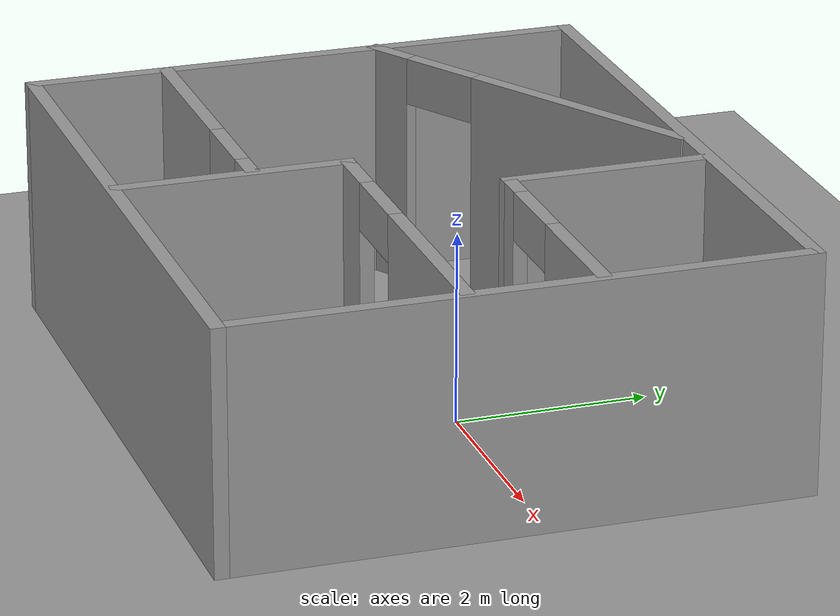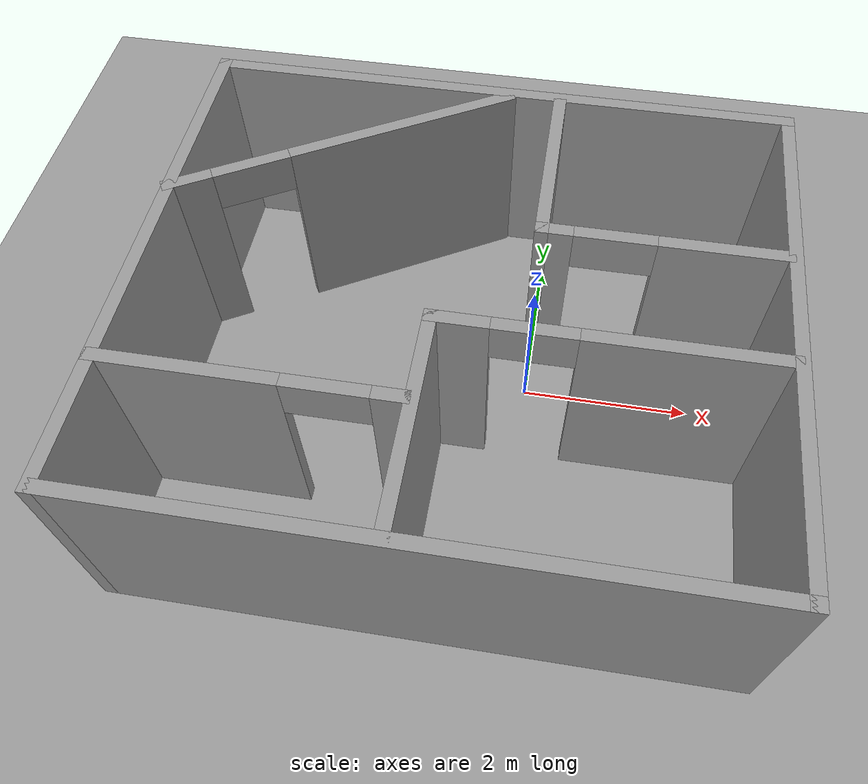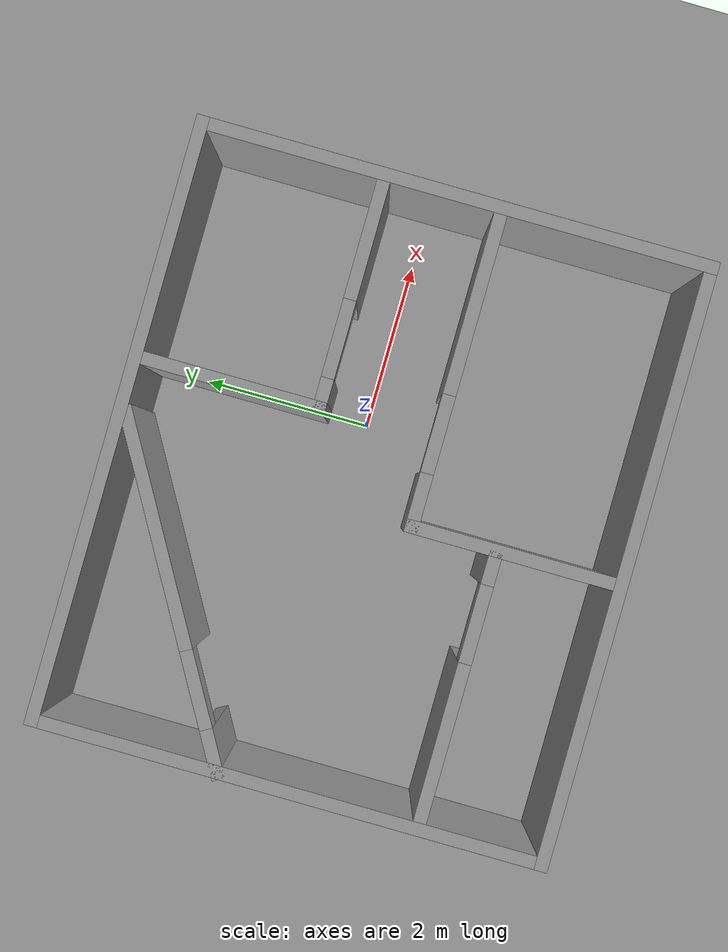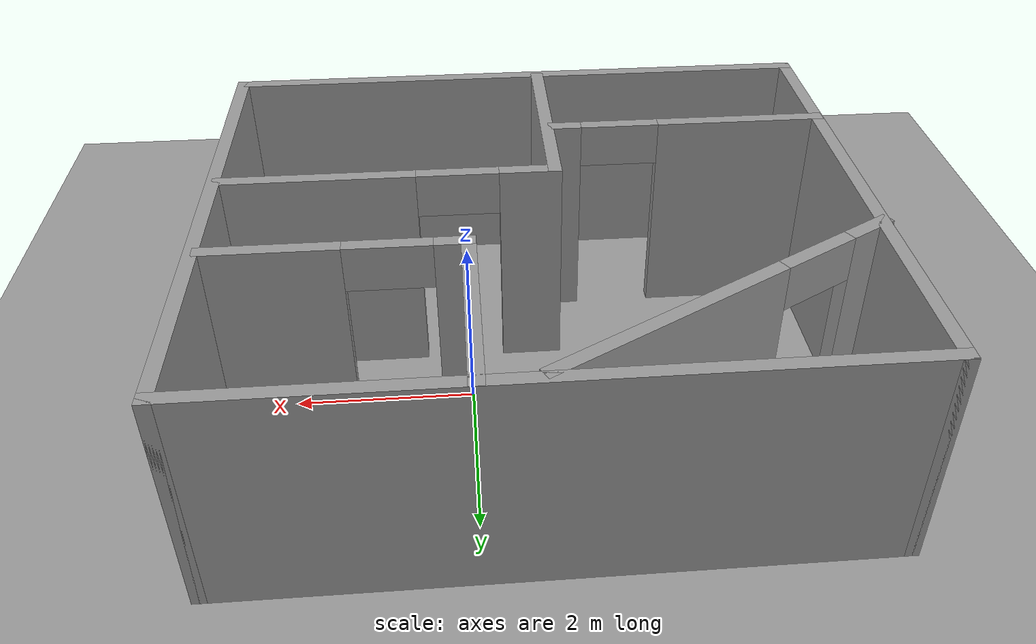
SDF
<sdf version="1.6">
 <world name="default">
  <light name="sun" type="directional">
   <pose>0 0 10 0 -0 0</pose>
   <diffuse>0.8 0.8 0.8 1</diffuse>
   <specular>0.2 0.2 0.2 1</specular>
   <attenuation>
    <range>1000</range>
    <constant>0.9</constant>
    <linear>0.01</linear>
    <quadratic>0.001</quadratic>
   </attenuation>
   <direction>0.5 0.1 -0.9</direction>
  </light>
  <scene><ambient>0.4 0.4 0.4 1</ambient><background>0.7 0.7 0.7 1</background><shadows>1</shadows></scene>
  <physics name="default_physics" default="0" type="ode">
   <max_step_size>0.01</max_step_size>
   <real_time_factor>1</real_time_factor>
   <real_time_update_rate>100</real_time_update_rate>
  </physics>
  <model name="ground_plane_0">
   <static>1</static>
   <link name="link">
    <collision name="collision">
     <geometry><plane><normal>0 0 1</normal><size>100 100</size></plane></geometry>
     <surface><friction><ode><mu>100</mu><mu2>50</mu2></ode></friction></surface>
    </collision>
    <visual name="visual">
     <cast_shadows>0</cast_shadows>
     <geometry><plane><normal>0 0 1</normal><size>100 100</size></plane></geometry>
     <material>
      <script><uri>file://media/materials/scripts/gazebo.material</uri><name>Gazebo/Grey</name></script>
     </material>
    </visual>
    <velocity_decay><linear>0</linear><angular>0</angular></velocity_decay>
   </link>
   <pose>0.497681 0 0 0 -0 0</pose>
  </model>
  <gravity>0 0 -9.8</gravity>
  <magnetic_field>6e-06 2.3e-05 -4.2e-05</magnetic_field>
  <atmosphere type="adiabatic"/>
  <spherical_coordinates>
   <surface_model>EARTH_WGS84</surface_model>
   <latitude_deg>0</latitude_deg>
   <longitude_deg>0</longitude_deg>
   <elevation>0</elevation>
   <heading_deg>0</heading_deg>
  </spherical_coordinates>
  <model name="Untitled">
   <pose>-0.784087 -0.278741 0 0 -0 0</pose>
   <link name="Wall_12">
    <collision name="Wall_12_Collision">
     <geometry><box><size>7 0.15 2.5</size></box></geometry>
     <pose>0 0 1.25 0 -0 0</pose>
    </collision>
    <visual name="Wall_12_Visual">
     <pose>0 0 1.25 0 -0 0</pose>
     <geometry><box><size>7 0.15 2.5</size></box></geometry>
     <material>
      <script><uri>file://media/materials/scripts/gazebo.material</uri><name>Gazebo/Grey</name></script>
      <ambient>1 1 1 1</ambient>
     </material>
     <meta><layer>0</layer></meta>
    </visual>
    <pose>0.017489 2.925 0 0 -0 0</pose>
   </link>
   <link name="Wall_13">
    <collision name="Wall_13_Collision">
     <geometry><box><size>6 0.15 2.5</size></box></geometry>
     <pose>0 0 1.25 0 -0 0</pose>
    </collision>
    <visual name="Wall_13_Visual">
     <pose>0 0 1.25 0 -0 0</pose>
     <geometry><box><size>6 0.15 2.5</size></box></geometry>
     <material>
      <script><uri>file://media/materials/scripts/gazebo.material</uri><name>Gazebo/Grey</name></script>
      <ambient>1 1 1 1</ambient>
     </material>
     <meta><layer>0</layer></meta>
    </visual>
    <pose>3.44249 0 0 0 -0 -1.5708</pose>
   </link>
   <link name="Wall_14">
    <collision name="Wall_14_Collision">
     <geometry><box><size>7 0.15 2.5</size></box></geometry>
     <pose>0 0 1.25 0 -0 0</pose>
    </collision>
    <visual name="Wall_14_Visual">
     <pose>0 0 1.25 0 -0 0</pose>
     <geometry><box><size>7 0.15 2.5</size></box></geometry>
     <material>
      <script><uri>file://media/materials/scripts/gazebo.material</uri><name>Gazebo/Grey</name></script>
      <ambient>1 1 1 1</ambient>
     </material>
     <meta><layer>0</layer></meta>
    </visual>
    <pose>0.017489 -2.925 0 0 -0 3.14159</pose>
   </link>
   <link name="Wall_15">
    <collision name="Wall_15_Collision">
     <geometry><box><size>6 0.15 2.5</size></box></geometry>
     <pose>0 0 1.25 0 -0 0</pose>
    </collision>
    <visual name="Wall_15_Visual">
     <pose>0 0 1.25 0 -0 0</pose>
     <geometry><box><size>6 0.15 2.5</size></box></geometry>
     <material>
      <script><uri>file://media/materials/scripts/gazebo.material</uri><name>Gazebo/Grey</name></script>
      <ambient>1 1 1 1</ambient>
     </material>
     <meta><layer>0</layer></meta>
    </visual>
    <pose>-3.40751 0 0 0 -0 1.5708</pose>
   </link>
   <link name="Wall_22">
    <pose>-1.63969 1.82728 0 0 -0 0.523599</pose>
    <visual name="Wall_22_Visual_0">
     <pose>-1.84173 0 1.25 0 -0 0</pose>
     <geometry><box><size>0.566535 0.15 2.5</size></box></geometry>
     <material>
      <script><uri>file://media/materials/scripts/gazebo.material</uri><name>Gazebo/Grey</name></script>
      <ambient>1 1 1 1</ambient>
     </material>
     <meta><layer>0</layer></meta>
    </visual>
    <collision name="Wall_22_Collision_0">
     <geometry><box><size>0.566535 0.15 2.5</size></box></geometry>
     <pose>-1.84173 0 1.25 0 -0 0</pose>
    </collision>
    <visual name="Wall_22_Visual_1">
     <pose>0.733268 0 1.25 0 -0 0</pose>
     <geometry><box><size>2.78347 0.15 2.5</size></box></geometry>
     <material>
      <script><uri>file://media/materials/scripts/gazebo.material</uri><name>Gazebo/Grey</name></script>
      <ambient>1 1 1 1</ambient>
     </material>
     <meta><layer>0</layer></meta>
    </visual>
    <collision name="Wall_22_Collision_1">
     <geometry><box><size>2.78347 0.15 2.5</size></box></geometry>
     <pose>0.733268 0 1.25 0 -0 0</pose>
    </collision>
    <visual name="Wall_22_Visual_2">
     <pose>-1.10847 0 2.25 0 -0 0</pose>
     <geometry><box><size>0.9 0.15 0.5</size></box></geometry>
     <material>
      <script><uri>file://media/materials/scripts/gazebo.material</uri><name>Gazebo/Grey</name></script>
      <ambient>1 1 1 1</ambient>
     </material>
     <meta><layer>0</layer></meta>
    </visual>
    <collision name="Wall_22_Collision_2">
     <geometry><box><size>0.9 0.15 0.5</size></box></geometry>
     <pose>-1.10847 0 2.25 0 -0 0</pose>
    </collision>
   </link>
   <link name="Wall_26">
    <collision name="Wall_26_Collision">
     <geometry><box><size>2.25 0.15 2.5</size></box></geometry>
     <pose>0 0 1.25 0 -0 0</pose>
    </collision>
    <visual name="Wall_26_Visual">
     <pose>0 0 1.25 0 -0 0</pose>
     <geometry><box><size>2.25 0.15 2.5</size></box></geometry>
     <material>
      <script><uri>file://media/materials/scripts/gazebo.material</uri><name>Gazebo/Grey</name></script>
      <ambient>1 1 1 1</ambient>
     </material>
     <meta><layer>0</layer></meta>
    </visual>
    <pose>0.764062 1.86828 0 0 -0 -1.5708</pose>
   </link>
   <link name="Wall_27">
    <pose>2.06406 0.818281 0 0 -0 0</pose>
    <visual name="Wall_27_Visual_0">
     <pose>-1.16575 0 1.25 0 -0 0</pose>
     <geometry><box><size>0.4185 0.15 2.5</size></box></geometry>
     <material>
      <script><uri>file://media/materials/scripts/gazebo.material</uri><name>Gazebo/Grey</name></script>
      <ambient>1 1 1 1</ambient>
     </material>
     <meta><layer>0</layer></meta>
    </visual>
    <collision name="Wall_27_Collision_0">
     <geometry><box><size>0.4185 0.15 2.5</size></box></geometry>
     <pose>-1.16575 0 1.25 0 -0 0</pose>
    </collision>
    <visual name="Wall_27_Visual_1">
     <pose>0.65925 0 1.25 0 -0 0</pose>
     <geometry><box><size>1.4315 0.15 2.5</size></box></geometry>
     <material>
      <script><uri>file://media/materials/scripts/gazebo.material</uri><name>Gazebo/Grey</name></script>
      <ambient>1 1 1 1</ambient>
     </material>
     <meta><layer>0</layer></meta>
    </visual>
    <collision name="Wall_27_Collision_1">
     <geometry><box><size>1.4315 0.15 2.5</size></box></geometry>
     <pose>0.65925 0 1.25 0 -0 0</pose>
    </collision>
    <visual name="Wall_27_Visual_2">
     <pose>-0.5065 0 2.25 0 -0 0</pose>
     <geometry><box><size>0.9 0.15 0.5</size></box></geometry>
     <material>
      <script><uri>file://media/materials/scripts/gazebo.material</uri><name>Gazebo/Grey</name></script>
      <ambient>1 1 1 1</ambient>
     </material>
     <meta><layer>0</layer></meta>
    </visual>
    <collision name="Wall_27_Collision_2">
     <geometry><box><size>0.9 0.15 0.5</size></box></geometry>
     <pose>-0.5065 0 2.25 0 -0 0</pose>
    </collision>
   </link>
   <link name="Wall_29">
    <pose>-1.85181 -1.49887 0 0 -0 0</pose>
    <visual name="Wall_29_Visual_0">
     <pose>-0.642087 0 1.25 0 -0 0</pose>
     <geometry><box><size>1.96582 0.15 2.5</size></box></geometry>
     <material>
      <script><uri>file://media/materials/scripts/gazebo.material</uri><name>Gazebo/Grey</name></script>
      <ambient>1 1 1 1</ambient>
     </material>
     <meta><layer>0</layer></meta>
    </visual>
    <collision name="Wall_29_Collision_0">
     <geometry><box><size>1.96582 0.15 2.5</size></box></geometry>
     <pose>-0.642087 0 1.25 0 -0 0</pose>
    </collision>
    <visual name="Wall_29_Visual_1">
     <pose>1.43291 0 1.25 0 -0 0</pose>
     <geometry><box><size>0.384175 0.15 2.5</size></box></geometry>
     <material>
      <script><uri>file://media/materials/scripts/gazebo.material</uri><name>Gazebo/Grey</name></script>
      <ambient>1 1 1 1</ambient>
     </material>
     <meta><layer>0</layer></meta>
    </visual>
    <collision name="Wall_29_Collision_1">
     <geometry><box><size>0.384175 0.15 2.5</size></box></geometry>
     <pose>1.43291 0 1.25 0 -0 0</pose>
    </collision>
    <visual name="Wall_29_Visual_2">
     <pose>0.790825 0 2.25 0 -0 0</pose>
     <geometry><box><size>0.9 0.15 0.5</size></box></geometry>
     <material>
      <script><uri>file://media/materials/scripts/gazebo.material</uri><name>Gazebo/Grey</name></script>
      <ambient>1 1 1 1</ambient>
     </material>
     <meta><layer>0</layer></meta>
    </visual>
    <collision name="Wall_29_Collision_2">
     <geometry><box><size>0.9 0.15 0.5</size></box></geometry>
     <pose>0.790825 0 2.25 0 -0 0</pose>
    </collision>
   </link>
   <link name="Wall_31">
    <collision name="Wall_31_Collision">
     <geometry><box><size>2.5 0.15 2.5</size></box></geometry>
     <pose>0 0 1.25 0 -0 0</pose>
    </collision>
    <visual name="Wall_31_Visual">
     <pose>0 0 1.25 0 -0 0</pose>
     <geometry><box><size>2.5 0.15 2.5</size></box></geometry>
     <material>
      <script><uri>file://media/materials/scripts/gazebo.material</uri><name>Gazebo/Grey</name></script>
      <ambient>1 1 1 1</ambient>
     </material>
     <meta><layer>0</layer></meta>
    </visual>
    <pose>-0.214588 -1.69927 0 0 -0 1.5708</pose>
   </link>
   <link name="Wall_32">
    <pose>1.58541 -0.524269 0 0 -0 0</pose>
    <visual name="Wall_32_Visual_0">
     <pose>-1.5335 0 1.25 0 -0 0</pose>
     <geometry><box><size>0.683 0.15 2.5</size></box></geometry>
     <material>
      <script><uri>file://media/materials/scripts/gazebo.material</uri><name>Gazebo/Grey</name></script>
      <ambient>1 1 1 1</ambient>
     </material>
     <meta><layer>0</layer></meta>
    </visual>
    <collision name="Wall_32_Collision_0">
     <geometry><box><size>0.683 0.15 2.5</size></box></geometry>
     <pose>-1.5335 0 1.25 0 -0 0</pose>
    </collision>
    <visual name="Wall_32_Visual_1">
     <pose>0.7915 0 1.25 0 -0 0</pose>
     <geometry><box><size>2.167 0.15 2.5</size></box></geometry>
     <material>
      <script><uri>file://media/materials/scripts/gazebo.material</uri><name>Gazebo/Grey</name></script>
      <ambient>1 1 1 1</ambient>
     </material>
     <meta><layer>0</layer></meta>
    </visual>
    <collision name="Wall_32_Collision_1">
     <geometry><box><size>2.167 0.15 2.5</size></box></geometry>
     <pose>0.7915 0 1.25 0 -0 0</pose>
    </collision>
    <visual name="Wall_32_Visual_2">
     <pose>-0.742 0 2.25 0 -0 0</pose>
     <geometry><box><size>0.9 0.15 0.5</size></box></geometry>
     <material>
      <script><uri>file://media/materials/scripts/gazebo.material</uri><name>Gazebo/Grey</name></script>
      <ambient>1 1 1 1</ambient>
     </material>
     <meta><layer>0</layer></meta>
    </visual>
    <collision name="Wall_32_Collision_2">
     <geometry><box><size>0.9 0.15 0.5</size></box></geometry>
     <pose>-0.742 0 2.25 0 -0 0</pose>
    </collision>
   </link>
   <static>1</static>
  </model>
 </world>
</sdf>
